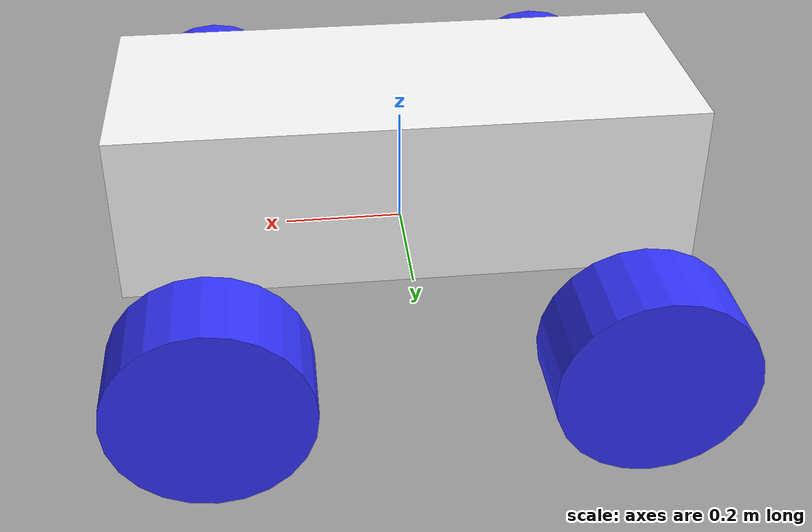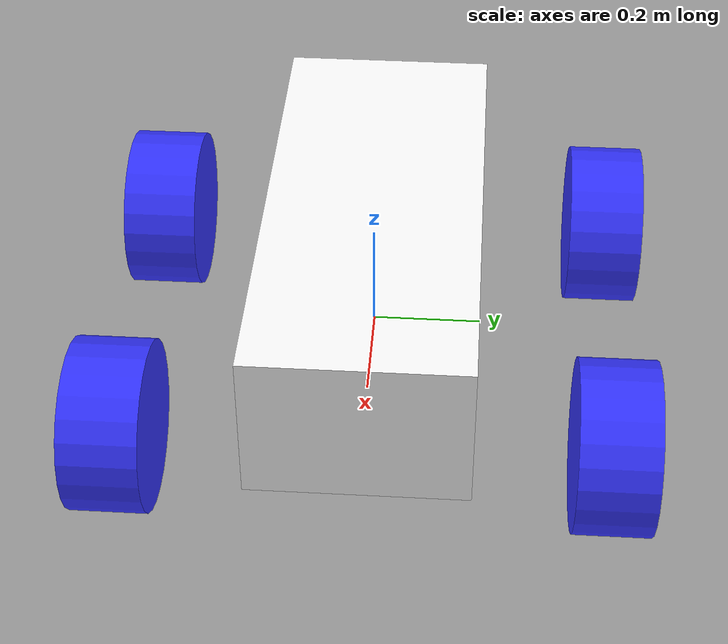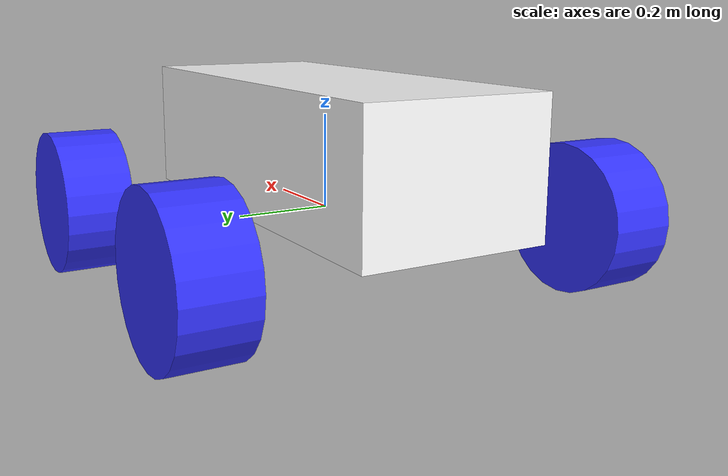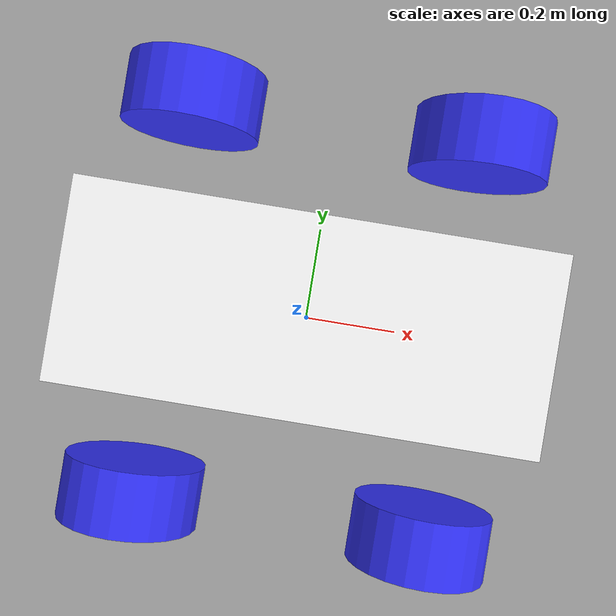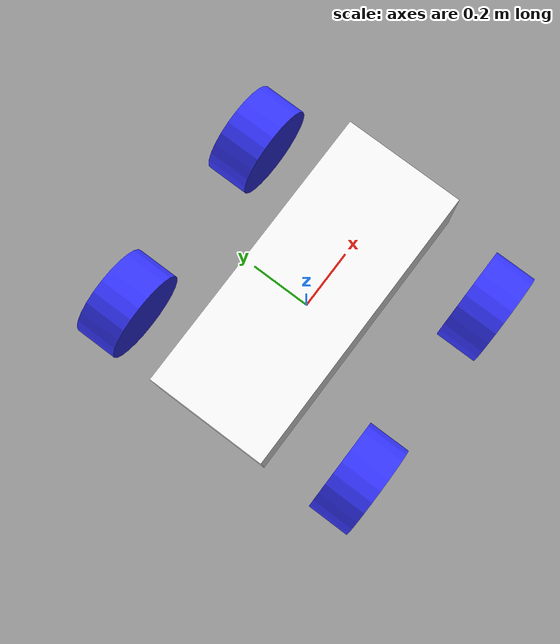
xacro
<?xml version="1.0"?>
<robot name="ackermann_1" xmlns:xacro="http://www.ros.org/wiki/xacro">

    <xacro:include filename="inertial_macros.xacro"/>

    <!-- MACROS FOR COLORS -->
    <material name="white">
        <color rgba="1 1 1 1"/>
    </material>

    <material name="orange">
        <color rgba="1 0.3 0.1 1"/>
    </material>

    <material name="blue">
        <color rgba="0.2 0.2 1 1"/>
    </material>

    <material name="black">
        <color rgba="0 0 0 1"/>
    </material>

    <material name="red">
        <color rgba="1 0 0 1"/>
    </material>
    <!-- PROPERTIES FOR SIZES -->
    <xacro:property name="chasis_x" value="0.94"/>
    <xacro:property name="chasis_y" value="0.39"/>
    <xacro:property name="chasis_z" value="0.28"/>
    <xacro:property name="chasis_mass" value="50.0"/>

    <xacro:property name="wheel_radius" value="0.155"/>
    <xacro:property name="wheel_thickness" value="0.14"/>
    <xacro:property name="wheel_sep" value="0.6"/>
    <xacro:property name="front_rear_sep" value="0.65"/>
    <xacro:property name="wheel_mass" value="0.5"/>

    <xacro:property name="max_steer" value="0.6458"/>

	<!-- Base link -->
    <link name="base_footprint"/>

    <joint name="base_joint" type="fixed">
        <parent link="base_footprint"/>
        <child link="base_link" />
        <origin xyz="0 0 0" rpy="0 0 0"/>
      </joint>

    <link name="base_link">
    </link>

	<!-- Chasis-->
	<joint name="chasis_joint" type="fixed">
        <parent link="base_link"/>
        <child link="chasis"/>
        <origin xyz="-${chasis_x/2} 0 0"/>
    </joint>

    <link name="chasis">

        <visual>
            <origin xyz="${chasis_x/2} 0 ${chasis_z/2}" rpy="0 0 0"/>
            <geometry>
            <box size="${chasis_x} ${chasis_y} ${chasis_z}"/>
            </geometry>
            <material name="white"/>
        </visual>

        <collision>
        <origin xyz="${chasis_x/2} 0 ${chasis_z/2}" rpy="0 0 0"/>
        <geometry>
                <box size="${chasis_x} ${chasis_y} ${chasis_z}"/>
        </geometry>
        </collision>

        <xacro:inertial_box mass="${chasis_mass}" x="${chasis_x}" y="${chasis_y}" z="${chasis_z}">
                <origin xyz="${chasis_x/2} 0 ${chasis_z/2}" rpy="0 0 0"/>
        </xacro:inertial_box>
    </link>

    <gazebo reference="chasis">
        <kp>1000000.0</kp>
        <kd>0.1</kd>
        <dampingFactor>0</dampingFactor>
        <material>Gazebo/White</material>
        <selfCollide>true</selfCollide>
        <turnGravityOff>false</turnGravityOff>
        <mu1 value="0.1"/>
        <mu2 value="0.1"/>
        <fdir1 value="0 0 0"/>
    </gazebo>

    <!--FRONT RIGHT WHEEL ROTATE-->

    <joint name="front_right_wheel_rotate_joint" type="revolute">
        <parent link="chasis"/>
        <child link="front_right_wheel_rotate"/>
        <origin xyz="${front_rear_sep + (chasis_x - front_rear_sep)/2} -${wheel_sep/2 + wheel_thickness} 0" rpy="0 0 0" />

        <axis xyz="0 0 1"/>
        <limit effort="100" velocity="1" lower="-${max_steer}" upper="${max_steer}"/>
    </joint>

    <link name="front_right_wheel_rotate">
        <visual>
            <origin xyz="0 0 0" rpy="${pi/2} 0 0" />
            <geometry>
                <cylinder length="${wheel_thickness}" radius="${wheel_radius}"/>
            </geometry>
            <material name="blue"/>
        </visual>

		<collision>
            <origin xyz="0 0 0" rpy="${pi/2} 0 0" />
		    <geometry>
                <cylinder length="${wheel_thickness}" radius="${wheel_radius}"/>
            </geometry>
		</collision>

		<xacro:inertial_cylinder mass="${wheel_mass}" length="${wheel_thickness}" radius="${wheel_radius}">
            <origin xyz="0 0 0" rpy="${pi/2} 0 0"/>
        </xacro:inertial_cylinder>

	</link>

    <gazebo reference="front_right_wheel_rotate">
        <mu1 value="2.0"/>
        <mu2 value="2.0"/>
        <kp  value="10000000.0" />
        <kd  value="1.0" />
        <fdir1 value="0 1 0"/>
        <material>Gazebo/Blue</material>
      </gazebo>

    <!--FRONT RIGHT WHEEL MOVE-->

    <joint name="front_right_wheel_move_joint" type="continuous">
        <parent link="front_right_wheel_rotate"/>
        <child link="front_right_wheel_move"/>

        <origin xyz="0 0 0" rpy="${pi/2} 0 0" />
        <axis xyz="0 0 -1" rpy="0 0 0" />
    </joint>

	<link name="front_right_wheel_move">

        <visual>
            <geometry>
                <cylinder length="${wheel_thickness}" radius="${wheel_radius}"/>
            </geometry>
            <material name="blue"/>
        </visual>

		<collision>
		    <geometry>
                <cylinder length="${wheel_thickness}" radius="${wheel_radius}"/>
		    </geometry>
		</collision>

        <xacro:inertial_cylinder mass="${wheel_mass}" length="${wheel_thickness}" radius="${wheel_radius}">
            <origin xyz="0 0 0" rpy="0 0 0"/>
        </xacro:inertial_cylinder>

	</link>

    <gazebo reference="front_right_wheel_move">
        <mu1 value="2.0"/>
        <mu2 value="2.0"/>
        <kp  value="10000000.0" />
        <kd  value="1.0" />
        <fdir1 value="0 1 0"/>
        <material>Gazebo/Blue</material>
    </gazebo>

    <!--FRONT LEFT WHEEL ROTATE-->
    <joint name="front_left_wheel_rotate_joint" type="revolute">
        <parent link="chasis"/>
        <child link="front_left_wheel_rotate"/>
        <origin xyz="${front_rear_sep + (chasis_x - front_rear_sep)/2} ${wheel_sep/2 + wheel_thickness} 0" rpy="0 0 0" />

        <axis xyz="0 0 1"/>
        <limit effort="100" velocity="1" lower="-${max_steer}" upper="${max_steer}"/>
    </joint>

    <link name="front_left_wheel_rotate">
        <visual>
            <origin xyz="0 0 0" rpy="${-pi/2} 0 0" />
            <geometry>
                <cylinder length="${wheel_thickness}" radius="${wheel_radius}"/>
            </geometry>
            <material name="blue"/>
        </visual>

		<collision>
            <origin xyz="0 0 0" rpy="${-pi/2} 0 0" />
		    <geometry>
                <cylinder length="${wheel_thickness}" radius="${wheel_radius}"/>
            </geometry>
		</collision>

		<xacro:inertial_cylinder mass="${wheel_mass}" length="${wheel_thickness}" radius="${wheel_radius}">
            <origin xyz="0 0 0" rpy="${-pi/2} 0 0"/>
        </xacro:inertial_cylinder>

	</link>

    <gazebo reference="front_left_wheel_rotate">
        <mu1 value="2.0"/>
        <mu2 value="2.0"/>
        <kp  value="10000000.0" />
        <kd  value="1.0" />
        <fdir1 value="0 1 0"/>
        <material>Gazebo/Blue</material>
      </gazebo>

    <!--LEFT RIGHT WHEEL MOVE-->

    <joint name="front_left_wheel_move_joint" type="continuous">
        <parent link="front_left_wheel_rotate"/>
        <child link="front_left_wheel_move"/>

        <origin xyz="0 0 0" rpy="-${pi/2} 0 0" />
        <axis xyz="0 0 1" rpy="0 0 0" />
    </joint>

	<link name="front_left_wheel_move">

        <visual>
            <geometry>
                <cylinder length="${wheel_thickness}" radius="${wheel_radius}"/>
            </geometry>
            <material name="blue"/>
        </visual>

		<collision>
		    <geometry>
                <cylinder length="${wheel_thickness}" radius="${wheel_radius}"/>
		    </geometry>
		</collision>

        <xacro:inertial_cylinder mass="${wheel_mass}" length="${wheel_thickness}" radius="${wheel_radius}">
            <origin xyz="0 0 0" rpy="0 0 0"/>
        </xacro:inertial_cylinder>

	</link>

    <gazebo reference="front_left_wheel_move">
        <mu1 value="2.0"/>
        <mu2 value="2.0"/>
        <kp  value="10000000.0" />
        <kd  value="1.0" />
        <fdir1 value="0 1 0"/>
        <material>Gazebo/White</material>
      </gazebo>

    <!--BACK RIGHT WHEEL-->

    <joint name="back_right_wheel_joint" type="continuous">
        <parent link="chasis"/>
        <child link="back_right_wheel"/>
        <origin xyz="${(chasis_x - front_rear_sep)/2} -${wheel_sep/2 + wheel_thickness} 0" rpy="${pi/2} 0 0" />

        <axis xyz="0 0 -1"/>
    </joint>

    <link name="back_right_wheel">
        <visual>
            <geometry>
                <cylinder length="${wheel_thickness}" radius="${wheel_radius}"/>
            </geometry>
            <material name="blue"/>
        </visual>

		<collision>
		    <geometry>
                <cylinder length="${wheel_thickness}" radius="${wheel_radius}"/>
            </geometry>
		</collision>

		<xacro:inertial_cylinder mass="${wheel_mass}" length="${wheel_thickness}" radius="${wheel_radius}">
            <origin xyz="0 0 0" rpy="0 0 0"/>
        </xacro:inertial_cylinder>

	</link>

    <gazebo reference="back_right_wheel">
        <mu1 value="2.0"/>
        <mu2 value="2.0"/>
        <kp  value="10000000.0" />
        <kd  value="1.0" />
        <fdir1 value="0 1 0"/>
        <material>Gazebo/Blue</material>
      </gazebo>

    <!--BACK LEFT WHEEL-->
    <joint name="back_left_wheel_joint" type="continuous">
        <parent link="chasis"/>
        <child link="back_left_wheel"/>
        <origin xyz="${(chasis_x - front_rear_sep)/2} ${wheel_sep/2 + wheel_thickness} 0" rpy="-${pi/2} 0 0" />

        <axis xyz="0 0 1"/>
    </joint>

    <link name="back_left_wheel">
        <visual>
            <geometry>
                <cylinder length="${wheel_thickness}" radius="${wheel_radius}"/>
            </geometry>
            <material name="blue"/>
        </visual>

		<collision>
		    <geometry>
                <cylinder length="${wheel_thickness}" radius="${wheel_radius}"/>
            </geometry>
		</collision>

		<xacro:inertial_cylinder mass="${wheel_mass}" length="${wheel_thickness}" radius="${wheel_radius}">
            <origin xyz="0 0 0" rpy="0 0 0"/>
        </xacro:inertial_cylinder>

	</link>

    <gazebo reference="back_left_wheel">
        <material>Gazebo/Blue</material>
    </gazebo>

    <gazebo reference="left_wheel_rear">
        <mu1 value="2.0"/>
        <mu2 value="2.0"/>
        <kp  value="10000000.0" />
        <kd  value="1.0" />
        <fdir1 value="0 1 0"/>
        <material>Gazebo/Blue</material>
    </gazebo>
	</robot>
